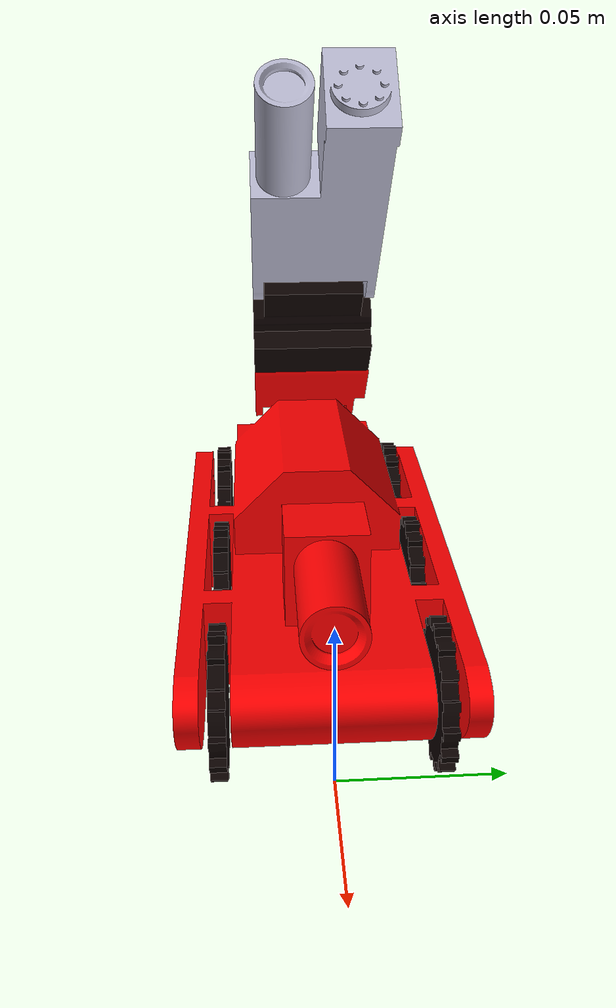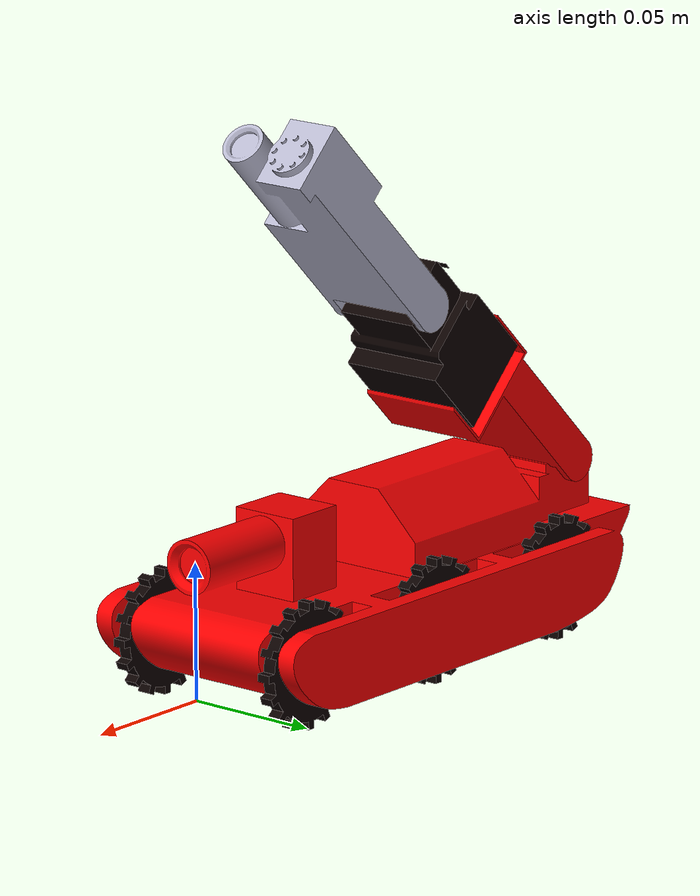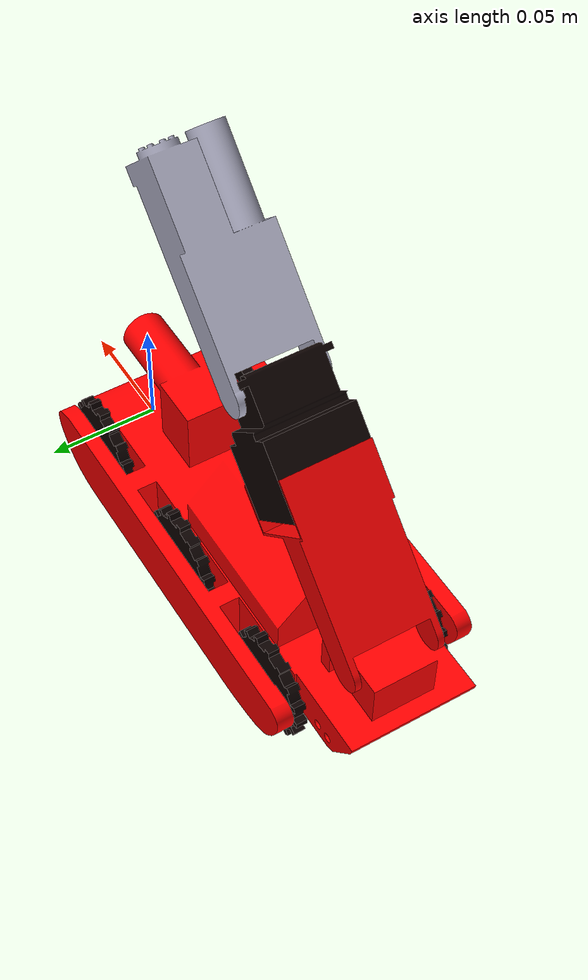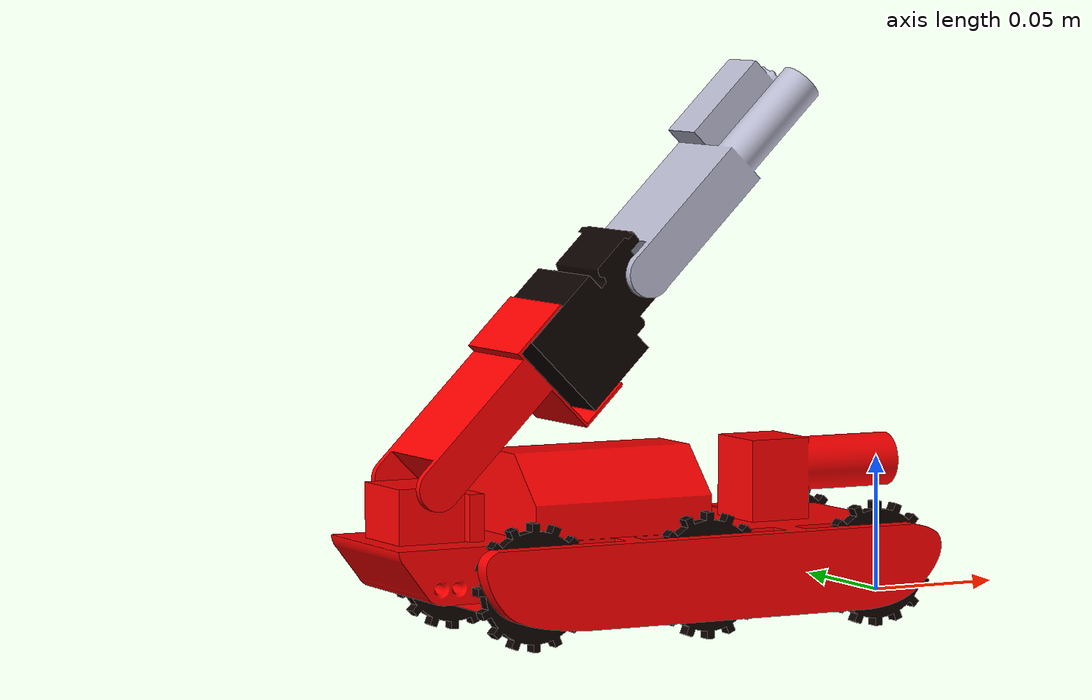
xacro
<?xml version="1.0" ?>
<robot name="scorpion"
    xmlns:xacro="http://wiki.ros.org/xacro">

    <material name="red">
        <color rgba="1 0.0 0.0 1"/>
    </material>
    <material name="black">
        <color rgba="0.043 0.004 0 1"/>
    </material>
    <material name="silver">
        <color rgba="0.73 0.73 0.82 1"/>
    </material>

    <xacro:include filename="$(find start_creating_robots)/worlds_and_models/krytn/inertial.xacro" />
    <link name="base_link" />
    <joint name="chasis_link_joint" type="fixed">
        <parent link="base_link" />
        <child link="chassis_link" />
        <origin xyz="0 0 0" rpy="0 0 3.141" />
    </joint>
    <!--Generated by CROSS, a ROS Workbench for FreeCAD (https://github.com/galou/freecad.cross)-->
    <link name="chassis_link">
        <visual>
            <!--chassis/Body.-->
            <origin xyz="0.0 0.0 0.0" rpy="0.0 -0.0 0.0"/>
            <geometry>
                <mesh filename="file://$(find scorpion)/worlds_and_models/scorpion/meshes/Unnamed_chassis_body.dae"/>
            </geometry>
            <material name="red" />
        </visual>
        <collision>
            <origin xyz="0.09 0 0.03"/>
            <geometry>
                <box size="0.18 0.09 0.03" />
            </geometry>
        </collision>
        <xacro:box_inertial_with_origin x="0.18" y="0.09" z="0.15" mass="4">
            <origin xyz="0.09 0 0" />
        </xacro:box_inertial_with_origin>
    </link>
    <link name="tail_link1">
        <visual>
            <!--tail1/Body001.-->
            <origin xyz="0.0 0.0 0.0" rpy="0.0 -0.0 0.0"/>
            <geometry>
                <mesh filename="file://$(find scorpion)/worlds_and_models/scorpion/meshes/Unnamed_tail1_body.dae"/>
            </geometry>
            <material name="red" />

        </visual>
        <collision>
            <origin xyz="-0.042 0 0" />
            <geometry>
                <box size="0.085 0.04 0.015" />
            </geometry>
        </collision>
        <xacro:box_inertial_with_origin x="0.085" y="0.04" z="0.015" mass="0.8">
            <origin xyz="-0.04 0 0" />
        </xacro:box_inertial_with_origin>
    </link>
    <link name="tail_link2">
        <visual>
            <!--tail2/Body002.-->
            <origin xyz="0.0 0.0 0.0" rpy="0.0 -0.0 0.0"/>
            <geometry>
                <mesh filename="file://$(find scorpion)/worlds_and_models/scorpion/meshes/Unnamed_tail2_body.dae"/>
            </geometry>
            <material name="black" />

        </visual>
        <collision>
            <origin xyz="-0.025 0 0" />
            <geometry>
                <box size="0.05 0.03 0.04" />
            </geometry>
        </collision>
        <xacro:box_inertial_with_origin x="0.05" y="0.03" z="0.045" mass="0.2">
            <origin xyz="-0.025 0 0" />
        </xacro:box_inertial_with_origin>

    </link>
    <link name="tail_link3">
        <visual>
            <!--tail3/Body003.-->
            <origin xyz="0.0 0.0 0.0" rpy="0.0 -0.0 0.0"/>
            <geometry>
                <mesh filename="file://$(find scorpion)/worlds_and_models/scorpion/meshes/Unnamed_tail3_body.dae"/>
            </geometry>
            <material name="silver" />

        </visual>
        <xacro:box_inertial_with_origin x="0.1" y="0.025" z="0.054" mass="0.4">
            <origin xyz="-0.05 0 0" />
        </xacro:box_inertial_with_origin>
        <collision>
            <origin xyz="-0.05 0 0" rpy="1.57 0 0" />
            <geometry>
                <box size="0.1 0.025 0.054" />
            </geometry>
        </collision>
    </link>

    <xacro:macro name="wheel" params="side num">

        <link name="${side}_wheel_${num}">
            <visual>
                <!--wheel/Body004.-->
                <origin xyz="0.0 0.0 0.0" rpy="0.0 -0.0 0.0"/>
                <geometry>
                    <mesh filename="file://$(find scorpion)/worlds_and_models/scorpion/meshes/Unnamed_wheel_body.dae"/>
                </geometry>
                <material name="black" />

            </visual>
            <collision>
                <origin rpy="1.57 0 0" />
                <geometry>
                    <cylinder radius="0.02" length="0.02" />
                </geometry>

            </collision>
            <xacro:cylinder_inertial_with_origin radius="0.01" length="0.005" mass="0.0005">
                <origin rpy="1.57 0 0"/>
            </xacro:cylinder_inertial_with_origin>

        </link>
        <gazebo reference="${side}_wheel_${num}">
            <collision>
                <surface>
                    <friction>
                        <ode>
                            <mu>0.5</mu>
                            <mu1>0.5</mu1>
                            <mu2>1.0</mu2>
                            <fdir1>0 0 1</fdir1>
                        </ode>
                    </friction>
                </surface>
            </collision>
        </gazebo>

    </xacro:macro>

    <!-- Example of a tail-recursion loop in Xacro. This macro calls itself with 1 minus its given value. -->
    <xacro:macro name="make_side_wheels" params="side num">
        <xacro:if value="${num > 0}">
            <xacro:wheel side="${side}" num="${num}" />
            <xacro:make_side_wheels side="${side}" num="${num-1}" />
        </xacro:if>
    </xacro:macro>

    <xacro:make_side_wheels side="left" num="3" />
    <xacro:make_side_wheels side="right" num="3" />

    <joint name="joint_1" type="revolute">
        <parent link="chassis_link"/>
        <child link="tail_link1"/>
        <origin xyz="0.19 0.0 0.05" rpy="0.0 0.7853981633974484 0.0"/>
        <axis xyz="0 -1 0"/>
        <limit upper="3.14" lower="-3.141592653589793" velocity="10" effort="10.0"/>
    </joint>
    <joint name="joint_2" type="revolute">
        <parent link="tail_link1"/>
        <child link="tail_link2"/>
        <origin xyz="-0.065 0.0 -0.008" rpy="0.0 -0.0 0.0"/>
        <axis xyz="0 0 1"/>
        <limit lower="-1.5707963267948966" upper="1.5707963267948966" velocity="1" effort="10.0"/>
    </joint>
    <joint name="joint_3" type="revolute">
        <parent link="tail_link2"/>
        <child link="tail_link3"/>
        <origin xyz="-0.046 0.0 0.0" rpy="0.0 -0.0 0.0"/>
        <axis xyz="0 -1 0"/>
        <limit lower="-1.5707963267948966" upper="1.5707963267948966" velocity="1" effort="10.0"/>
    </joint>

    <xacro:macro name="make_wheel_joint" params="xyz side num">
        <joint name="${side}_wheel_joint_${num}" type="continuous">
            <parent link="chassis_link"/>
            <child link="${side}_wheel_${num}"/>
            <origin xyz="${xyz}" rpy="0 0 0"/>
            <axis xyz="0 -1 0"/>
            <limit lower="-10000.0" upper="10000.0" velocity="1" effort="10.0"/>
        </joint>
    </xacro:macro>

    <xacro:make_wheel_joint xyz="0.02 -0.033 0.015" side="left" num="1" />
    <xacro:make_wheel_joint xyz="0.09 -0.033 0.015" side="left" num="2" />
    <xacro:make_wheel_joint xyz="0.16 -0.033 0.015" side="left" num="3" />

    <xacro:make_wheel_joint xyz="0.02 0.033 0.015" side="right" num="1" />
    <xacro:make_wheel_joint xyz="0.09 0.033 0.015" side="right" num="2" />
    <xacro:make_wheel_joint xyz="0.16 0.033 0.015" side="right" num="3" />

    <xacro:macro name="ros2_control_wheel_joint" params="side num">
        <joint name="${side}_wheel_joint_${num}">
            <command_interface name="velocity">
                <param name="min">-0.2</param>
                <param name="max">0.2</param>
            </command_interface>
            <state_interface name="position"/>
            <state_interface name="velocity"/>
        </joint>
    </xacro:macro>

    <xacro:macro name="ros2_control_make_side_wheels" params="side num">
        <xacro:if value="${num > 0}">
            <xacro:ros2_control_wheel_joint side="${side}" num="${num}" />
            <xacro:ros2_control_make_side_wheels side="${side}" num="${num-1}" />
        </xacro:if>
    </xacro:macro>

    <xacro:macro name="ros2_control_tail_joint" params="num minj maxj">
        <joint name="joint_${num}">
            <command_interface name="position">
                <param name="min">${minj}</param>
                <param name="max">${maxj}</param>
            </command_interface>
            <state_interface name="position"/>
            <state_interface name="velocity"/>
        </joint>

    </xacro:macro>

    <ros2_control name="GazeboSystem" type="system">
        <hardware>
            <plugin>ign_ros2_control/IgnitionSystem</plugin>
        </hardware>
        <!-- Using Xacro to minimise boilerplate code -->
        <xacro:ros2_control_make_side_wheels side="left" num="3" />
        <xacro:ros2_control_make_side_wheels side="right" num="3" />

        <xacro:ros2_control_tail_joint num="1" minj="0" maxj="3.14" />
        <xacro:ros2_control_tail_joint num="2" minj="-1.57" maxj="1.57" />
        <xacro:ros2_control_tail_joint num="3" minj="-1.57" maxj="1.57" />

    </ros2_control>

    <gazebo>
        <plugin filename="ign_ros2_control-system" name="ign_ros2_control::IgnitionROS2ControlPlugin">
            <ros>
                <remapping>/diff_drive_base_controller/odom:=odom</remapping>
                <remapping>/diff_drive_base_controller/tf_odometry:=tf</remapping>
                <remapping>/diff_drive_base_controller/cmd_vel_unstamped:=cmd_vel</remapping>
            </ros>
            <parameters>$(find scorpion)/config/diffdrive_control.yaml</parameters>
        </plugin>
        <!-- Remapping topics so that mapping system works! -->
        <plugin filename="ignition-gazebo-sensors-system" name="ignition::gazebo::systems::Sensors">
            <render_engine>ogre2</render_engine>
        </plugin>
    </gazebo>

    <link name="chassis_camera_link" />

    <joint name="chassis_camera_joint" type="fixed">
        <parent link="chassis_link"/>
        <child link="chassis_camera_link" />
        <origin xyz="0 0 0.1" rpy="0 0 3.141" />
    </joint>
    <gazebo reference="chassis_camera_link">

        <sensor name="realsense_d435" type="rgbd_camera">
            <topic>realsense</topic>
            <ignition_frame_id>chassis_camera_optical_link</ignition_frame_id>
            <update_rate>5</update_rate>
            <camera name="depth_camera">
                <horizontal_fov>1.4</horizontal_fov>
                <image>
                    <width>640</width>
                    <height>480</height>
                    <format>R8G8B8</format>
                </image>
                <clip>
                    <near>0.01</near>
                    <far>5</far>
                </clip>
                <depth_camera>
                    <clip>
                        <near>0.1</near>
                        <far>5</far>
                    </clip>
                </depth_camera>
                <noise>
                    <type>gaussian</type>
                    <mean>0</mean>
                    <stddev>0.007</stddev>
                </noise>
            </camera>
        </sensor>
    </gazebo>

    <link name="tail_camera_link"/>

    <joint name="tail_camera_joint" type="fixed">
        <parent link="tail_link3" />
        <child link="tail_camera_link" />
        <origin xyz="-0.25 0 0" rpy="0 0 3.141"/>
    </joint>

    <gazebo reference="tail_camera_link">

        <sensor name="tailcamera" type="camera">
            <topic>tail_camera</topic>
            <ignition_frame_id>tail_camera_link</ignition_frame_id>
            <update_rate>5</update_rate>

            <camera>
                <horizontal_fov>1.047</horizontal_fov>
                <image>
                    <width>320</width>
                    <height>240</height>
                </image>
                <clip>
                    <near>0.1</near>
                    <far>20</far>
                </clip>
            </camera>
            <always_on>1</always_on>
            <update_rate>5</update_rate>
            <visualize>true</visualize>
        </sensor>
    </gazebo>
</robot>
